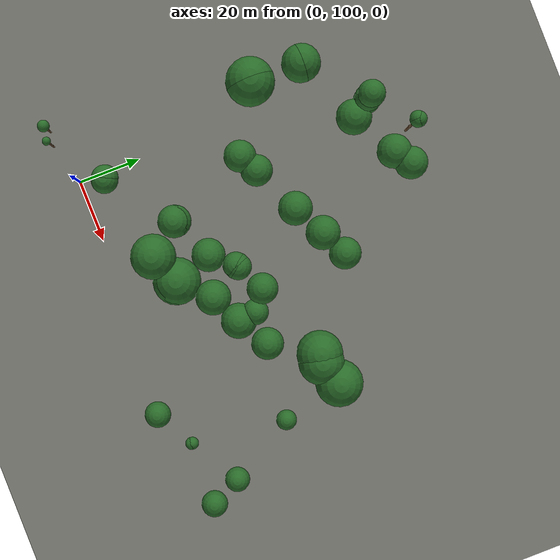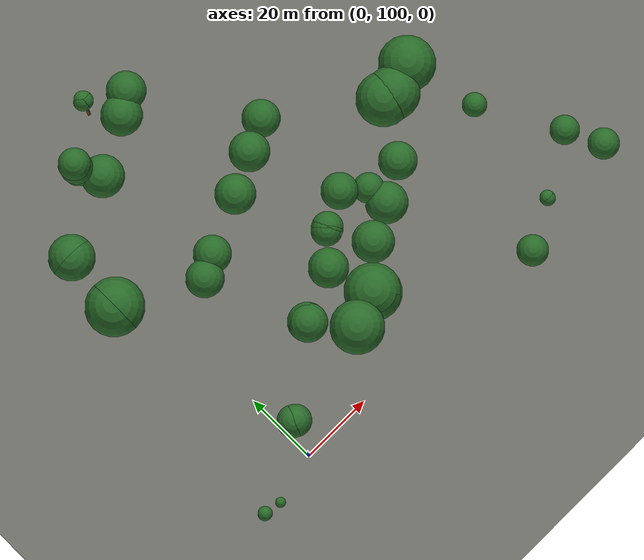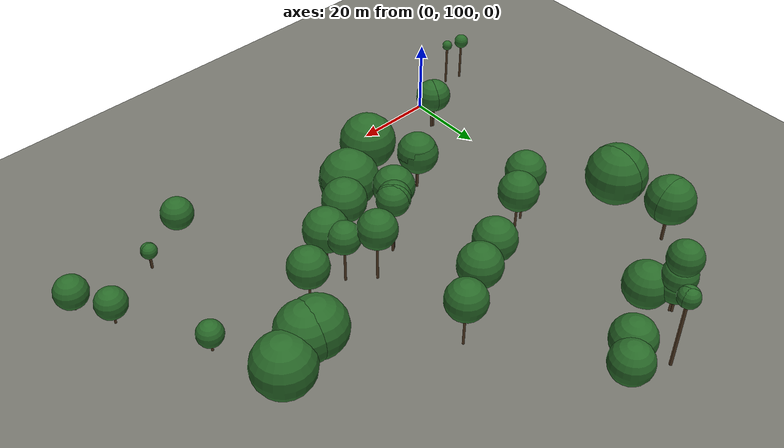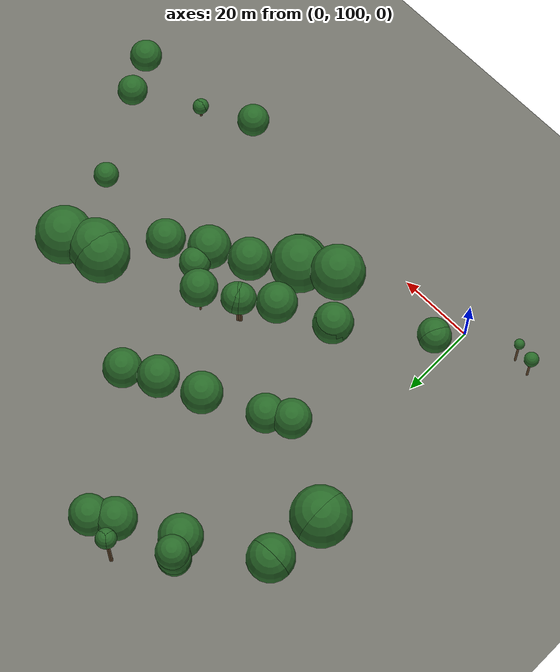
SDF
<sdf version="1.9">
 <world name="uav_arena_bk">
  <model name="ground_plane">
   <static>true</static>
   <link name="link">
    <collision name="collision">
     <geometry><plane><normal>0 0 1</normal><size>1200 1200</size></plane></geometry>
    </collision>
    <visual name="visual">
     <geometry><plane><normal>0 0 1</normal><size>1200 1200</size></plane></geometry>
     <material><ambient>0.35 0.35 0.33 1</ambient><diffuse>0.45 0.45 0.42 1</diffuse></material>
    </visual>
   </link>
  </model>
  <model name="tree_001">
   <static>true</static>
   <pose>22.447 203.263 0 0 0 0</pose>
   <link name="link">
    <collision name="trunk_collision">
     <pose>0 0 9.445 0 0 0</pose>
     <geometry><cylinder><radius>0.30</radius><length>18.890</length></cylinder></geometry>
    </collision>
    <visual name="trunk_visual">
     <pose>0 0 9.445 0 0 0</pose>
     <geometry><cylinder><radius>0.30</radius><length>18.890</length></cylinder></geometry>
     <material><ambient>0.25 0.18 0.11 1</ambient><diffuse>0.35 0.25 0.15 1</diffuse></material>
    </visual>
    <collision name="canopy_collision">
     <pose>0 0 21.390 0 0 0</pose>
     <geometry><sphere><radius>2.500</radius></sphere></geometry>
    </collision>
    <visual name="canopy_visual">
     <pose>0 0 21.390 0 0 0</pose>
     <geometry><sphere><radius>2.500</radius></sphere></geometry>
     <material><ambient>0.10 0.28 0.10 1</ambient><diffuse>0.16 0.42 0.16 1</diffuse></material>
     <plugin filename="gz-sim-label-system" name="gz::sim::systems::Label"><label>2</label></plugin>
    </visual>
   </link>
  </model>
  <model name="tree_002">
   <static>true</static>
   <pose>22.196 203.014 0 0 0 0</pose>
   <link name="link">
    <collision name="trunk_collision">
     <pose>0 0 9.440 0 0 0</pose>
     <geometry><cylinder><radius>0.30</radius><length>18.880</length></cylinder></geometry>
    </collision>
    <visual name="trunk_visual">
     <pose>0 0 9.440 0 0 0</pose>
     <geometry><cylinder><radius>0.30</radius><length>18.880</length></cylinder></geometry>
     <material><ambient>0.25 0.18 0.11 1</ambient><diffuse>0.35 0.25 0.15 1</diffuse></material>
    </visual>
    <collision name="canopy_collision">
     <pose>0 0 21.380 0 0 0</pose>
     <geometry><sphere><radius>2.500</radius></sphere></geometry>
    </collision>
    <visual name="canopy_visual">
     <pose>0 0 21.380 0 0 0</pose>
     <geometry><sphere><radius>2.500</radius></sphere></geometry>
     <material><ambient>0.10 0.28 0.10 1</ambient><diffuse>0.16 0.42 0.16 1</diffuse></material>
     <plugin filename="gz-sim-label-system" name="gz::sim::systems::Label"><label>2</label></plugin>
    </visual>
   </link>
  </model>
  <model name="tree_003">
   <static>true</static>
   <pose>22.446 203.013 0 0 0 0</pose>
   <link name="link">
    <collision name="trunk_collision">
     <pose>0 0 9.435 0 0 0</pose>
     <geometry><cylinder><radius>0.30</radius><length>18.870</length></cylinder></geometry>
    </collision>
    <visual name="trunk_visual">
     <pose>0 0 9.435 0 0 0</pose>
     <geometry><cylinder><radius>0.30</radius><length>18.870</length></cylinder></geometry>
     <material><ambient>0.25 0.18 0.11 1</ambient><diffuse>0.35 0.25 0.15 1</diffuse></material>
    </visual>
    <collision name="canopy_collision">
     <pose>0 0 21.370 0 0 0</pose>
     <geometry><sphere><radius>2.500</radius></sphere></geometry>
    </collision>
    <visual name="canopy_visual">
     <pose>0 0 21.370 0 0 0</pose>
     <geometry><sphere><radius>2.500</radius></sphere></geometry>
     <material><ambient>0.10 0.28 0.10 1</ambient><diffuse>0.16 0.42 0.16 1</diffuse></material>
     <plugin filename="gz-sim-label-system" name="gz::sim::systems::Label"><label>2</label></plugin>
    </visual>
   </link>
  </model>
  <model name="tree_004">
   <static>true</static>
   <pose>32.928 199.706 0 0 0 0</pose>
   <link name="link">
    <collision name="trunk_collision">
     <pose>0 0 0.500 0 0 0</pose>
     <geometry><cylinder><radius>0.30</radius><length>1.000</length></cylinder></geometry>
    </collision>
    <visual name="trunk_visual">
     <pose>0 0 0.500 0 0 0</pose>
     <geometry><cylinder><radius>0.30</radius><length>1.000</length></cylinder></geometry>
     <material><ambient>0.25 0.18 0.11 1</ambient><diffuse>0.35 0.25 0.15 1</diffuse></material>
    </visual>
    <collision name="canopy_collision">
     <pose>0 0 6.270 0 0 0</pose>
     <geometry><sphere><radius>5.270</radius></sphere></geometry>
    </collision>
    <visual name="canopy_visual">
     <pose>0 0 6.270 0 0 0</pose>
     <geometry><sphere><radius>5.270</radius></sphere></geometry>
     <material><ambient>0.10 0.28 0.10 1</ambient><diffuse>0.16 0.42 0.16 1</diffuse></material>
     <plugin filename="gz-sim-label-system" name="gz::sim::systems::Label"><label>2</label></plugin>
    </visual>
   </link>
  </model>
  <model name="tree_005">
   <static>true</static>
   <pose>27.658 195.985 0 0 0 0</pose>
   <link name="link">
    <collision name="trunk_collision">
     <pose>0 0 0.500 0 0 0</pose>
     <geometry><cylinder><radius>0.30</radius><length>1.000</length></cylinder></geometry>
    </collision>
    <visual name="trunk_visual">
     <pose>0 0 0.500 0 0 0</pose>
     <geometry><cylinder><radius>0.30</radius><length>1.000</length></cylinder></geometry>
     <material><ambient>0.25 0.18 0.11 1</ambient><diffuse>0.35 0.25 0.15 1</diffuse></material>
    </visual>
    <collision name="canopy_collision">
     <pose>0 0 6.500 0 0 0</pose>
     <geometry><sphere><radius>5.500</radius></sphere></geometry>
    </collision>
    <visual name="canopy_visual">
     <pose>0 0 6.500 0 0 0</pose>
     <geometry><sphere><radius>5.500</radius></sphere></geometry>
     <material><ambient>0.10 0.28 0.10 1</ambient><diffuse>0.16 0.42 0.16 1</diffuse></material>
     <plugin filename="gz-sim-label-system" name="gz::sim::systems::Label"><label>2</label></plugin>
    </visual>
   </link>
  </model>
  <model name="tree_006">
   <static>true</static>
   <pose>9.646 193.832 0 0 0 0</pose>
   <link name="link">
    <collision name="trunk_collision">
     <pose>0 0 6.415 0 0 0</pose>
     <geometry><cylinder><radius>0.30</radius><length>12.830</length></cylinder></geometry>
    </collision>
    <visual name="trunk_visual">
     <pose>0 0 6.415 0 0 0</pose>
     <geometry><cylinder><radius>0.30</radius><length>12.830</length></cylinder></geometry>
     <material><ambient>0.25 0.18 0.11 1</ambient><diffuse>0.35 0.25 0.15 1</diffuse></material>
    </visual>
    <collision name="canopy_collision">
     <pose>0 0 17.090 0 0 0</pose>
     <geometry><sphere><radius>4.260</radius></sphere></geometry>
    </collision>
    <visual name="canopy_visual">
     <pose>0 0 17.090 0 0 0</pose>
     <geometry><sphere><radius>4.260</radius></sphere></geometry>
     <material><ambient>0.10 0.28 0.10 1</ambient><diffuse>0.16 0.42 0.16 1</diffuse></material>
     <plugin filename="gz-sim-label-system" name="gz::sim::systems::Label"><label>2</label></plugin>
    </visual>
   </link>
  </model>
  <model name="tree_007">
   <static>true</static>
   <pose>9.644 193.582 0 0 0 0</pose>
   <link name="link">
    <collision name="trunk_collision">
     <pose>0 0 3.560 0 0 0</pose>
     <geometry><cylinder><radius>0.30</radius><length>7.120</length></cylinder></geometry>
    </collision>
    <visual name="trunk_visual">
     <pose>0 0 3.560 0 0 0</pose>
     <geometry><cylinder><radius>0.30</radius><length>7.120</length></cylinder></geometry>
     <material><ambient>0.25 0.18 0.11 1</ambient><diffuse>0.35 0.25 0.15 1</diffuse></material>
    </visual>
    <collision name="canopy_collision">
     <pose>0 0 11.380 0 0 0</pose>
     <geometry><sphere><radius>4.260</radius></sphere></geometry>
    </collision>
    <visual name="canopy_visual">
     <pose>0 0 11.380 0 0 0</pose>
     <geometry><sphere><radius>4.260</radius></sphere></geometry>
     <material><ambient>0.10 0.28 0.10 1</ambient><diffuse>0.16 0.42 0.16 1</diffuse></material>
     <plugin filename="gz-sim-label-system" name="gz::sim::systems::Label"><label>2</label></plugin>
    </visual>
   </link>
  </model>
  <model name="tree_008">
   <static>true</static>
   <pose>9.893 193.331 0 0 0 0</pose>
   <link name="link">
    <collision name="trunk_collision">
     <pose>0 0 1.945 0 0 0</pose>
     <geometry><cylinder><radius>0.30</radius><length>3.890</length></cylinder></geometry>
    </collision>
    <visual name="trunk_visual">
     <pose>0 0 1.945 0 0 0</pose>
     <geometry><cylinder><radius>0.30</radius><length>3.890</length></cylinder></geometry>
     <material><ambient>0.25 0.18 0.11 1</ambient><diffuse>0.35 0.25 0.15 1</diffuse></material>
    </visual>
    <collision name="canopy_collision">
     <pose>0 0 8.150 0 0 0</pose>
     <geometry><sphere><radius>4.260</radius></sphere></geometry>
    </collision>
    <visual name="canopy_visual">
     <pose>0 0 8.150 0 0 0</pose>
     <geometry><sphere><radius>4.260</radius></sphere></geometry>
     <material><ambient>0.10 0.28 0.10 1</ambient><diffuse>0.16 0.42 0.16 1</diffuse></material>
     <plugin filename="gz-sim-label-system" name="gz::sim::systems::Label"><label>2</label></plugin>
    </visual>
   </link>
  </model>
  <model name="tree_009">
   <static>true</static>
   <pose>13.114 188.064 0 0 0 0</pose>
   <link name="link">
    <collision name="trunk_collision">
     <pose>0 0 0.500 0 0 0</pose>
     <geometry><cylinder><radius>0.30</radius><length>1.000</length></cylinder></geometry>
    </collision>
    <visual name="trunk_visual">
     <pose>0 0 0.500 0 0 0</pose>
     <geometry><cylinder><radius>0.30</radius><length>1.000</length></cylinder></geometry>
     <material><ambient>0.25 0.18 0.11 1</ambient><diffuse>0.35 0.25 0.15 1</diffuse></material>
    </visual>
    <collision name="canopy_collision">
     <pose>0 0 6.700 0 0 0</pose>
     <geometry><sphere><radius>5.700</radius></sphere></geometry>
    </collision>
    <visual name="canopy_visual">
     <pose>0 0 6.700 0 0 0</pose>
     <geometry><sphere><radius>5.700</radius></sphere></geometry>
     <material><ambient>0.10 0.28 0.10 1</ambient><diffuse>0.16 0.42 0.16 1</diffuse></material>
     <plugin filename="gz-sim-label-system" name="gz::sim::systems::Label"><label>2</label></plugin>
    </visual>
   </link>
  </model>
  <model name="tree_010">
   <static>true</static>
   <pose>-7.441 177.925 0 0 0 0</pose>
   <link name="link">
    <collision name="trunk_collision">
     <pose>0 0 3.455 0 0 0</pose>
     <geometry><cylinder><radius>0.30</radius><length>6.910</length></cylinder></geometry>
    </collision>
    <visual name="trunk_visual">
     <pose>0 0 3.455 0 0 0</pose>
     <geometry><cylinder><radius>0.30</radius><length>6.910</length></cylinder></geometry>
     <material><ambient>0.25 0.18 0.11 1</ambient><diffuse>0.35 0.25 0.15 1</diffuse></material>
    </visual>
    <collision name="canopy_collision">
     <pose>0 0 12.910 0 0 0</pose>
     <geometry><sphere><radius>6.000</radius></sphere></geometry>
    </collision>
    <visual name="canopy_visual">
     <pose>0 0 12.910 0 0 0</pose>
     <geometry><sphere><radius>6.000</radius></sphere></geometry>
     <material><ambient>0.10 0.28 0.10 1</ambient><diffuse>0.16 0.42 0.16 1</diffuse></material>
     <plugin filename="gz-sim-label-system" name="gz::sim::systems::Label"><label>2</label></plugin>
    </visual>
   </link>
  </model>
  <model name="tree_011">
   <static>true</static>
   <pose>-7.442 177.675 0 0 0 0</pose>
   <link name="link">
    <collision name="trunk_collision">
     <pose>0 0 3.455 0 0 0</pose>
     <geometry><cylinder><radius>0.30</radius><length>6.910</length></cylinder></geometry>
    </collision>
    <visual name="trunk_visual">
     <pose>0 0 3.455 0 0 0</pose>
     <geometry><cylinder><radius>0.30</radius><length>6.910</length></cylinder></geometry>
     <material><ambient>0.25 0.18 0.11 1</ambient><diffuse>0.35 0.25 0.15 1</diffuse></material>
    </visual>
    <collision name="canopy_collision">
     <pose>0 0 12.910 0 0 0</pose>
     <geometry><sphere><radius>6.000</radius></sphere></geometry>
    </collision>
    <visual name="canopy_visual">
     <pose>0 0 12.910 0 0 0</pose>
     <geometry><sphere><radius>6.000</radius></sphere></geometry>
     <material><ambient>0.10 0.28 0.10 1</ambient><diffuse>0.16 0.42 0.16 1</diffuse></material>
     <plugin filename="gz-sim-label-system" name="gz::sim::systems::Label"><label>2</label></plugin>
    </visual>
   </link>
  </model>
  <model name="tree_012">
   <static>true</static>
   <pose>51.762 169.104 0 0 0 0</pose>
   <link name="link">
    <collision name="trunk_collision">
     <pose>0 0 4.595 0 0 0</pose>
     <geometry><cylinder><radius>0.30</radius><length>9.190</length></cylinder></geometry>
    </collision>
    <visual name="trunk_visual">
     <pose>0 0 4.595 0 0 0</pose>
     <geometry><cylinder><radius>0.30</radius><length>9.190</length></cylinder></geometry>
     <material><ambient>0.25 0.18 0.11 1</ambient><diffuse>0.35 0.25 0.15 1</diffuse></material>
    </visual>
    <collision name="canopy_collision">
     <pose>0 0 14.190 0 0 0</pose>
     <geometry><sphere><radius>5.000</radius></sphere></geometry>
    </collision>
    <visual name="canopy_visual">
     <pose>0 0 14.190 0 0 0</pose>
     <geometry><sphere><radius>5.000</radius></sphere></geometry>
     <material><ambient>0.10 0.28 0.10 1</ambient><diffuse>0.16 0.42 0.16 1</diffuse></material>
     <plugin filename="gz-sim-label-system" name="gz::sim::systems::Label"><label>2</label></plugin>
    </visual>
   </link>
  </model>
  <model name="tree_013">
   <static>true</static>
   <pose>43.489 164.899 0 0 0 0</pose>
   <link name="link">
    <collision name="trunk_collision">
     <pose>0 0 5.310 0 0 0</pose>
     <geometry><cylinder><radius>0.30</radius><length>10.620</length></cylinder></geometry>
    </collision>
    <visual name="trunk_visual">
     <pose>0 0 5.310 0 0 0</pose>
     <geometry><cylinder><radius>0.30</radius><length>10.620</length></cylinder></geometry>
     <material><ambient>0.25 0.18 0.11 1</ambient><diffuse>0.35 0.25 0.15 1</diffuse></material>
    </visual>
    <collision name="canopy_collision">
     <pose>0 0 15.940 0 0 0</pose>
     <geometry><sphere><radius>5.320</radius></sphere></geometry>
    </collision>
    <visual name="canopy_visual">
     <pose>0 0 15.940 0 0 0</pose>
     <geometry><sphere><radius>5.320</radius></sphere></geometry>
     <material><ambient>0.10 0.28 0.10 1</ambient><diffuse>0.16 0.42 0.16 1</diffuse></material>
     <plugin filename="gz-sim-label-system" name="gz::sim::systems::Label"><label>2</label></plugin>
    </visual>
   </link>
  </model>
  <model name="tree_014">
   <static>true</static>
   <pose>-8.530 161.431 0 0 0 0</pose>
   <link name="link">
    <collision name="trunk_collision">
     <pose>0 0 1.090 0 0 0</pose>
     <geometry><cylinder><radius>0.30</radius><length>2.180</length></cylinder></geometry>
    </collision>
    <visual name="trunk_visual">
     <pose>0 0 1.090 0 0 0</pose>
     <geometry><cylinder><radius>0.30</radius><length>2.180</length></cylinder></geometry>
     <material><ambient>0.25 0.18 0.11 1</ambient><diffuse>0.35 0.25 0.15 1</diffuse></material>
    </visual>
    <collision name="canopy_collision">
     <pose>0 0 9.880 0 0 0</pose>
     <geometry><sphere><radius>7.700</radius></sphere></geometry>
    </collision>
    <visual name="canopy_visual">
     <pose>0 0 9.880 0 0 0</pose>
     <geometry><sphere><radius>7.700</radius></sphere></geometry>
     <material><ambient>0.10 0.28 0.10 1</ambient><diffuse>0.16 0.42 0.16 1</diffuse></material>
     <plugin filename="gz-sim-label-system" name="gz::sim::systems::Label"><label>2</label></plugin>
    </visual>
   </link>
  </model>
  <model name="tree_015">
   <static>true</static>
   <pose>-8.280 161.429 0 0 0 0</pose>
   <link name="link">
    <collision name="trunk_collision">
     <pose>0 0 1.090 0 0 0</pose>
     <geometry><cylinder><radius>0.30</radius><length>2.180</length></cylinder></geometry>
    </collision>
    <visual name="trunk_visual">
     <pose>0 0 1.090 0 0 0</pose>
     <geometry><cylinder><radius>0.30</radius><length>2.180</length></cylinder></geometry>
     <material><ambient>0.25 0.18 0.11 1</ambient><diffuse>0.35 0.25 0.15 1</diffuse></material>
    </visual>
    <collision name="canopy_collision">
     <pose>0 0 9.880 0 0 0</pose>
     <geometry><sphere><radius>7.700</radius></sphere></geometry>
    </collision>
    <visual name="canopy_visual">
     <pose>0 0 9.880 0 0 0</pose>
     <geometry><sphere><radius>7.700</radius></sphere></geometry>
     <material><ambient>0.10 0.28 0.10 1</ambient><diffuse>0.16 0.42 0.16 1</diffuse></material>
     <plugin filename="gz-sim-label-system" name="gz::sim::systems::Label"><label>2</label></plugin>
    </visual>
   </link>
  </model>
  <model name="tree_016">
   <static>true</static>
   <pose>33.462 159.953 0 0 0 0</pose>
   <link name="link">
    <collision name="trunk_collision">
     <pose>0 0 4.165 0 0 0</pose>
     <geometry><cylinder><radius>0.30</radius><length>8.330</length></cylinder></geometry>
    </collision>
    <visual name="trunk_visual">
     <pose>0 0 4.165 0 0 0</pose>
     <geometry><cylinder><radius>0.30</radius><length>8.330</length></cylinder></geometry>
     <material><ambient>0.25 0.18 0.11 1</ambient><diffuse>0.35 0.25 0.15 1</diffuse></material>
    </visual>
    <collision name="canopy_collision">
     <pose>0 0 13.650 0 0 0</pose>
     <geometry><sphere><radius>5.320</radius></sphere></geometry>
    </collision>
    <visual name="canopy_visual">
     <pose>0 0 13.650 0 0 0</pose>
     <geometry><sphere><radius>5.320</radius></sphere></geometry>
     <material><ambient>0.10 0.28 0.10 1</ambient><diffuse>0.16 0.42 0.16 1</diffuse></material>
     <plugin filename="gz-sim-label-system" name="gz::sim::systems::Label"><label>2</label></plugin>
    </visual>
   </link>
  </model>
  <model name="tree_025">
   <static>true</static>
   <pose>88.927 153.402 0 0 0 0</pose>
   <link name="link">
    <collision name="trunk_collision">
     <pose>0 0 0.500 0 0 0</pose>
     <geometry><cylinder><radius>0.30</radius><length>1.000</length></cylinder></geometry>
    </collision>
    <visual name="trunk_visual">
     <pose>0 0 0.500 0 0 0</pose>
     <geometry><cylinder><radius>0.30</radius><length>1.000</length></cylinder></geometry>
     <material><ambient>0.25 0.18 0.11 1</ambient><diffuse>0.35 0.25 0.15 1</diffuse></material>
    </visual>
    <collision name="canopy_collision">
     <pose>0 0 8.500 0 0 0</pose>
     <geometry><sphere><radius>7.500</radius></sphere></geometry>
    </collision>
    <visual name="canopy_visual">
     <pose>0 0 8.500 0 0 0</pose>
     <geometry><sphere><radius>7.500</radius></sphere></geometry>
     <material><ambient>0.10 0.28 0.10 1</ambient><diffuse>0.16 0.42 0.16 1</diffuse></material>
     <plugin filename="gz-sim-label-system" name="gz::sim::systems::Label"><label>2</label></plugin>
    </visual>
   </link>
  </model>
  <model name="tree_026">
   <static>true</static>
   <pose>18.425 153.035 0 0 0 0</pose>
   <link name="link">
    <collision name="trunk_collision">
     <pose>0 0 4.770 0 0 0</pose>
     <geometry><cylinder><radius>0.30</radius><length>9.540</length></cylinder></geometry>
    </collision>
    <visual name="trunk_visual">
     <pose>0 0 4.770 0 0 0</pose>
     <geometry><cylinder><radius>0.30</radius><length>9.540</length></cylinder></geometry>
     <material><ambient>0.25 0.18 0.11 1</ambient><diffuse>0.35 0.25 0.15 1</diffuse></material>
    </visual>
    <collision name="canopy_collision">
     <pose>0 0 14.500 0 0 0</pose>
     <geometry><sphere><radius>4.960</radius></sphere></geometry>
    </collision>
    <visual name="canopy_visual">
     <pose>0 0 14.500 0 0 0</pose>
     <geometry><sphere><radius>4.960</radius></sphere></geometry>
     <material><ambient>0.10 0.28 0.10 1</ambient><diffuse>0.16 0.42 0.16 1</diffuse></material>
     <plugin filename="gz-sim-label-system" name="gz::sim::systems::Label"><label>2</label></plugin>
    </visual>
   </link>
  </model>
  <model name="tree_027">
   <static>true</static>
   <pose>77.914 150.962 0 0 0 0</pose>
   <link name="link">
    <collision name="trunk_collision">
     <pose>0 0 1.460 0 0 0</pose>
     <geometry><cylinder><radius>0.30</radius><length>2.920</length></cylinder></geometry>
    </collision>
    <visual name="trunk_visual">
     <pose>0 0 1.460 0 0 0</pose>
     <geometry><cylinder><radius>0.30</radius><length>2.920</length></cylinder></geometry>
     <material><ambient>0.25 0.18 0.11 1</ambient><diffuse>0.35 0.25 0.15 1</diffuse></material>
    </visual>
    <collision name="canopy_collision">
     <pose>0 0 10.170 0 0 0</pose>
     <geometry><sphere><radius>7.250</radius></sphere></geometry>
    </collision>
    <visual name="canopy_visual">
     <pose>0 0 10.170 0 0 0</pose>
     <geometry><sphere><radius>7.250</radius></sphere></geometry>
     <material><ambient>0.10 0.28 0.10 1</ambient><diffuse>0.16 0.42 0.16 1</diffuse></material>
     <plugin filename="gz-sim-label-system" name="gz::sim::systems::Label"><label>2</label></plugin>
    </visual>
   </link>
  </model>
  <model name="tree_028">
   <static>true</static>
   <pose>80.661 150.447 0 0 0 0</pose>
   <link name="link">
    <collision name="trunk_collision">
     <pose>0 0 1.455 0 0 0</pose>
     <geometry><cylinder><radius>0.30</radius><length>2.910</length></cylinder></geometry>
    </collision>
    <visual name="trunk_visual">
     <pose>0 0 1.455 0 0 0</pose>
     <geometry><cylinder><radius>0.30</radius><length>2.910</length></cylinder></geometry>
     <material><ambient>0.25 0.18 0.11 1</ambient><diffuse>0.35 0.25 0.15 1</diffuse></material>
    </visual>
    <collision name="canopy_collision">
     <pose>0 0 10.110 0 0 0</pose>
     <geometry><sphere><radius>7.200</radius></sphere></geometry>
    </collision>
    <visual name="canopy_visual">
     <pose>0 0 10.110 0 0 0</pose>
     <geometry><sphere><radius>7.200</radius></sphere></geometry>
     <material><ambient>0.10 0.28 0.10 1</ambient><diffuse>0.16 0.42 0.16 1</diffuse></material>
     <plugin filename="gz-sim-label-system" name="gz::sim::systems::Label"><label>2</label></plugin>
    </visual>
   </link>
  </model>
  <model name="tree_029">
   <static>true</static>
   <pose>12.657 149.816 0 0 0 0</pose>
   <link name="link">
    <collision name="trunk_collision">
     <pose>0 0 5.265 0 0 0</pose>
     <geometry><cylinder><radius>0.30</radius><length>10.530</length></cylinder></geometry>
    </collision>
    <visual name="trunk_visual">
     <pose>0 0 5.265 0 0 0</pose>
     <geometry><cylinder><radius>0.30</radius><length>10.530</length></cylinder></geometry>
     <material><ambient>0.25 0.18 0.11 1</ambient><diffuse>0.35 0.25 0.15 1</diffuse></material>
    </visual>
    <collision name="canopy_collision">
     <pose>0 0 15.530 0 0 0</pose>
     <geometry><sphere><radius>5.000</radius></sphere></geometry>
    </collision>
    <visual name="canopy_visual">
     <pose>0 0 15.530 0 0 0</pose>
     <geometry><sphere><radius>5.000</radius></sphere></geometry>
     <material><ambient>0.10 0.28 0.10 1</ambient><diffuse>0.16 0.42 0.16 1</diffuse></material>
     <plugin filename="gz-sim-label-system" name="gz::sim::systems::Label"><label>2</label></plugin>
    </visual>
   </link>
  </model>
  <model name="tree_032">
   <static>true</static>
   <pose>52.613 141.599 0 0 0 0</pose>
   <link name="link">
    <collision name="trunk_collision">
     <pose>0 0 5.445 0 0 0</pose>
     <geometry><cylinder><radius>0.30</radius><length>10.890</length></cylinder></geometry>
    </collision>
    <visual name="trunk_visual">
     <pose>0 0 5.445 0 0 0</pose>
     <geometry><cylinder><radius>0.30</radius><length>10.890</length></cylinder></geometry>
     <material><ambient>0.25 0.18 0.11 1</ambient><diffuse>0.35 0.25 0.15 1</diffuse></material>
    </visual>
    <collision name="canopy_collision">
     <pose>0 0 15.720 0 0 0</pose>
     <geometry><sphere><radius>4.830</radius></sphere></geometry>
    </collision>
    <visual name="canopy_visual">
     <pose>0 0 15.720 0 0 0</pose>
     <geometry><sphere><radius>4.830</radius></sphere></geometry>
     <material><ambient>0.10 0.28 0.10 1</ambient><diffuse>0.16 0.42 0.16 1</diffuse></material>
     <plugin filename="gz-sim-label-system" name="gz::sim::systems::Label"><label>2</label></plugin>
    </visual>
   </link>
  </model>
  <model name="tree_034">
   <static>true</static>
   <pose>43.839 137.147 0 0 0 0</pose>
   <link name="link">
    <collision name="trunk_collision">
     <pose>0 0 6.180 0 0 0</pose>
     <geometry><cylinder><radius>0.30</radius><length>12.360</length></cylinder></geometry>
    </collision>
    <visual name="trunk_visual">
     <pose>0 0 6.180 0 0 0</pose>
     <geometry><cylinder><radius>0.30</radius><length>12.360</length></cylinder></geometry>
     <material><ambient>0.25 0.18 0.11 1</ambient><diffuse>0.35 0.25 0.15 1</diffuse></material>
    </visual>
    <collision name="canopy_collision">
     <pose>0 0 16.430 0 0 0</pose>
     <geometry><sphere><radius>4.070</radius></sphere></geometry>
    </collision>
    <visual name="canopy_visual">
     <pose>0 0 16.430 0 0 0</pose>
     <geometry><sphere><radius>4.070</radius></sphere></geometry>
     <material><ambient>0.10 0.28 0.10 1</ambient><diffuse>0.16 0.42 0.16 1</diffuse></material>
     <plugin filename="gz-sim-label-system" name="gz::sim::systems::Label"><label>2</label></plugin>
    </visual>
   </link>
  </model>
  <model name="tree_035">
   <static>true</static>
   <pose>58.589 137.067 0 0 0 0</pose>
   <link name="link">
    <collision name="trunk_collision">
     <pose>0 0 4.835 0 0 0</pose>
     <geometry><cylinder><radius>0.30</radius><length>9.670</length></cylinder></geometry>
    </collision>
    <visual name="trunk_visual">
     <pose>0 0 4.835 0 0 0</pose>
     <geometry><cylinder><radius>0.30</radius><length>9.670</length></cylinder></geometry>
     <material><ambient>0.25 0.18 0.11 1</ambient><diffuse>0.35 0.25 0.15 1</diffuse></material>
    </visual>
    <collision name="canopy_collision">
     <pose>0 0 13.710 0 0 0</pose>
     <geometry><sphere><radius>4.040</radius></sphere></geometry>
    </collision>
    <visual name="canopy_visual">
     <pose>0 0 13.710 0 0 0</pose>
     <geometry><sphere><radius>4.040</radius></sphere></geometry>
     <material><ambient>0.10 0.28 0.10 1</ambient><diffuse>0.16 0.42 0.16 1</diffuse></material>
     <plugin filename="gz-sim-label-system" name="gz::sim::systems::Label"><label>2</label></plugin>
    </visual>
   </link>
  </model>
  <model name="tree_036">
   <static>true</static>
   <pose>69.088 137.010 0 0 0 0</pose>
   <link name="link">
    <collision name="trunk_collision">
     <pose>0 0 3.150 0 0 0</pose>
     <geometry><cylinder><radius>0.30</radius><length>6.300</length></cylinder></geometry>
    </collision>
    <visual name="trunk_visual">
     <pose>0 0 3.150 0 0 0</pose>
     <geometry><cylinder><radius>0.30</radius><length>6.300</length></cylinder></geometry>
     <material><ambient>0.25 0.18 0.11 1</ambient><diffuse>0.35 0.25 0.15 1</diffuse></material>
    </visual>
    <collision name="canopy_collision">
     <pose>0 0 11.360 0 0 0</pose>
     <geometry><sphere><radius>5.060</radius></sphere></geometry>
    </collision>
    <visual name="canopy_visual">
     <pose>0 0 11.360 0 0 0</pose>
     <geometry><sphere><radius>5.060</radius></sphere></geometry>
     <material><ambient>0.10 0.28 0.10 1</ambient><diffuse>0.16 0.42 0.16 1</diffuse></material>
     <plugin filename="gz-sim-label-system" name="gz::sim::systems::Label"><label>2</label></plugin>
    </visual>
   </link>
  </model>
  <model name="tree_037">
   <static>true</static>
   <pose>43.338 136.899 0 0 0 0</pose>
   <link name="link">
    <collision name="trunk_collision">
     <pose>0 0 6.190 0 0 0</pose>
     <geometry><cylinder><radius>0.30</radius><length>12.380</length></cylinder></geometry>
    </collision>
    <visual name="trunk_visual">
     <pose>0 0 6.190 0 0 0</pose>
     <geometry><cylinder><radius>0.30</radius><length>12.380</length></cylinder></geometry>
     <material><ambient>0.25 0.18 0.11 1</ambient><diffuse>0.35 0.25 0.15 1</diffuse></material>
    </visual>
    <collision name="canopy_collision">
     <pose>0 0 16.450 0 0 0</pose>
     <geometry><sphere><radius>4.070</radius></sphere></geometry>
    </collision>
    <visual name="canopy_visual">
     <pose>0 0 16.450 0 0 0</pose>
     <geometry><sphere><radius>4.070</radius></sphere></geometry>
     <material><ambient>0.10 0.28 0.10 1</ambient><diffuse>0.16 0.42 0.16 1</diffuse></material>
     <plugin filename="gz-sim-label-system" name="gz::sim::systems::Label"><label>2</label></plugin>
    </visual>
   </link>
  </model>
  <model name="tree_038">
   <static>true</static>
   <pose>43.588 136.898 0 0 0 0</pose>
   <link name="link">
    <collision name="trunk_collision">
     <pose>0 0 6.180 0 0 0</pose>
     <geometry><cylinder><radius>0.30</radius><length>12.360</length></cylinder></geometry>
    </collision>
    <visual name="trunk_visual">
     <pose>0 0 6.180 0 0 0</pose>
     <geometry><cylinder><radius>0.30</radius><length>12.360</length></cylinder></geometry>
     <material><ambient>0.25 0.18 0.11 1</ambient><diffuse>0.35 0.25 0.15 1</diffuse></material>
    </visual>
    <collision name="canopy_collision">
     <pose>0 0 16.430 0 0 0</pose>
     <geometry><sphere><radius>4.070</radius></sphere></geometry>
    </collision>
    <visual name="canopy_visual">
     <pose>0 0 16.430 0 0 0</pose>
     <geometry><sphere><radius>4.070</radius></sphere></geometry>
     <material><ambient>0.10 0.28 0.10 1</ambient><diffuse>0.16 0.42 0.16 1</diffuse></material>
     <plugin filename="gz-sim-label-system" name="gz::sim::systems::Label"><label>2</label></plugin>
    </visual>
   </link>
  </model>
  <model name="tree_039">
   <static>true</static>
   <pose>43.086 136.651 0 0 0 0</pose>
   <link name="link">
    <collision name="trunk_collision">
     <pose>0 0 6.190 0 0 0</pose>
     <geometry><cylinder><radius>0.30</radius><length>12.380</length></cylinder></geometry>
    </collision>
    <visual name="trunk_visual">
     <pose>0 0 6.190 0 0 0</pose>
     <geometry><cylinder><radius>0.30</radius><length>12.380</length></cylinder></geometry>
     <material><ambient>0.25 0.18 0.11 1</ambient><diffuse>0.35 0.25 0.15 1</diffuse></material>
    </visual>
    <collision name="canopy_collision">
     <pose>0 0 16.450 0 0 0</pose>
     <geometry><sphere><radius>4.070</radius></sphere></geometry>
    </collision>
    <visual name="canopy_visual">
     <pose>0 0 16.450 0 0 0</pose>
     <geometry><sphere><radius>4.070</radius></sphere></geometry>
     <material><ambient>0.10 0.28 0.10 1</ambient><diffuse>0.16 0.42 0.16 1</diffuse></material>
     <plugin filename="gz-sim-label-system" name="gz::sim::systems::Label"><label>2</label></plugin>
    </visual>
   </link>
  </model>
  <model name="tree_040">
   <static>true</static>
   <pose>94.072 133.874 0 0 0 0</pose>
   <link name="link">
    <collision name="trunk_collision">
     <pose>0 0 1.145 0 0 0</pose>
     <geometry><cylinder><radius>0.30</radius><length>2.290</length></cylinder></geometry>
    </collision>
    <visual name="trunk_visual">
     <pose>0 0 1.145 0 0 0</pose>
     <geometry><cylinder><radius>0.30</radius><length>2.290</length></cylinder></geometry>
     <material><ambient>0.25 0.18 0.11 1</ambient><diffuse>0.35 0.25 0.15 1</diffuse></material>
    </visual>
    <collision name="canopy_collision">
     <pose>0 0 5.540 0 0 0</pose>
     <geometry><sphere><radius>3.250</radius></sphere></geometry>
    </collision>
    <visual name="canopy_visual">
     <pose>0 0 5.540 0 0 0</pose>
     <geometry><sphere><radius>3.250</radius></sphere></geometry>
     <material><ambient>0.10 0.28 0.10 1</ambient><diffuse>0.16 0.42 0.16 1</diffuse></material>
     <plugin filename="gz-sim-label-system" name="gz::sim::systems::Label"><label>2</label></plugin>
    </visual>
   </link>
  </model>
  <model name="tree_041">
   <static>true</static>
   <pose>59.307 131.313 0 0 0 0</pose>
   <link name="link">
    <collision name="trunk_collision">
     <pose>0 0 3.490 0 0 0</pose>
     <geometry><cylinder><radius>0.30</radius><length>6.980</length></cylinder></geometry>
    </collision>
    <visual name="trunk_visual">
     <pose>0 0 3.490 0 0 0</pose>
     <geometry><cylinder><radius>0.30</radius><length>6.980</length></cylinder></geometry>
     <material><ambient>0.25 0.18 0.11 1</ambient><diffuse>0.35 0.25 0.15 1</diffuse></material>
    </visual>
    <collision name="canopy_collision">
     <pose>0 0 12.530 0 0 0</pose>
     <geometry><sphere><radius>5.550</radius></sphere></geometry>
    </collision>
    <visual name="canopy_visual">
     <pose>0 0 12.530 0 0 0</pose>
     <geometry><sphere><radius>5.550</radius></sphere></geometry>
     <material><ambient>0.10 0.28 0.10 1</ambient><diffuse>0.16 0.42 0.16 1</diffuse></material>
     <plugin filename="gz-sim-label-system" name="gz::sim::systems::Label"><label>2</label></plugin>
    </visual>
   </link>
  </model>
  <model name="tree_042">
   <static>true</static>
   <pose>37.050 129.934 0 0 0 0</pose>
   <link name="link">
    <collision name="trunk_collision">
     <pose>0 0 3.270 0 0 0</pose>
     <geometry><cylinder><radius>0.30</radius><length>6.540</length></cylinder></geometry>
    </collision>
    <visual name="trunk_visual">
     <pose>0 0 3.270 0 0 0</pose>
     <geometry><cylinder><radius>0.30</radius><length>6.540</length></cylinder></geometry>
     <material><ambient>0.25 0.18 0.11 1</ambient><diffuse>0.35 0.25 0.15 1</diffuse></material>
    </visual>
    <collision name="canopy_collision">
     <pose>0 0 11.790 0 0 0</pose>
     <geometry><sphere><radius>5.250</radius></sphere></geometry>
    </collision>
    <visual name="canopy_visual">
     <pose>0 0 11.790 0 0 0</pose>
     <geometry><sphere><radius>5.250</radius></sphere></geometry>
     <material><ambient>0.10 0.28 0.10 1</ambient><diffuse>0.16 0.42 0.16 1</diffuse></material>
     <plugin filename="gz-sim-label-system" name="gz::sim::systems::Label"><label>2</label></plugin>
    </visual>
   </link>
  </model>
  <model name="tree_043">
   <static>true</static>
   <pose>49.782 126.614 0 0 0 0</pose>
   <link name="link">
    <collision name="trunk_collision">
     <pose>0 0 3.605 0 0 0</pose>
     <geometry><cylinder><radius>0.30</radius><length>7.210</length></cylinder></geometry>
    </collision>
    <visual name="trunk_visual">
     <pose>0 0 3.605 0 0 0</pose>
     <geometry><cylinder><radius>0.30</radius><length>7.210</length></cylinder></geometry>
     <material><ambient>0.25 0.18 0.11 1</ambient><diffuse>0.35 0.25 0.15 1</diffuse></material>
    </visual>
    <collision name="canopy_collision">
     <pose>0 0 12.730 0 0 0</pose>
     <geometry><sphere><radius>5.520</radius></sphere></geometry>
    </collision>
    <visual name="canopy_visual">
     <pose>0 0 12.730 0 0 0</pose>
     <geometry><sphere><radius>5.520</radius></sphere></geometry>
     <material><ambient>0.10 0.28 0.10 1</ambient><diffuse>0.16 0.42 0.16 1</diffuse></material>
     <plugin filename="gz-sim-label-system" name="gz::sim::systems::Label"><label>2</label></plugin>
    </visual>
   </link>
  </model>
  <model name="tree_044">
   <static>true</static>
   <pose>23.517 124.007 0 0 0 0</pose>
   <link name="link">
    <collision name="trunk_collision">
     <pose>0 0 2.830 0 0 0</pose>
     <geometry><cylinder><radius>0.30</radius><length>5.660</length></cylinder></geometry>
    </collision>
    <visual name="trunk_visual">
     <pose>0 0 2.830 0 0 0</pose>
     <geometry><cylinder><radius>0.30</radius><length>5.660</length></cylinder></geometry>
     <material><ambient>0.25 0.18 0.11 1</ambient><diffuse>0.35 0.25 0.15 1</diffuse></material>
    </visual>
    <collision name="canopy_collision">
     <pose>0 0 10.810 0 0 0</pose>
     <geometry><sphere><radius>5.150</radius></sphere></geometry>
    </collision>
    <visual name="canopy_visual">
     <pose>0 0 10.810 0 0 0</pose>
     <geometry><sphere><radius>5.150</radius></sphere></geometry>
     <material><ambient>0.10 0.28 0.10 1</ambient><diffuse>0.16 0.42 0.16 1</diffuse></material>
     <plugin filename="gz-sim-label-system" name="gz::sim::systems::Label"><label>2</label></plugin>
    </visual>
   </link>
  </model>
  <model name="tree_045">
   <static>true</static>
   <pose>23.516 123.757 0 0 0 0</pose>
   <link name="link">
    <collision name="trunk_collision">
     <pose>0 0 3.000 0 0 0</pose>
     <geometry><cylinder><radius>0.30</radius><length>6.000</length></cylinder></geometry>
    </collision>
    <visual name="trunk_visual">
     <pose>0 0 3.000 0 0 0</pose>
     <geometry><cylinder><radius>0.30</radius><length>6.000</length></cylinder></geometry>
     <material><ambient>0.25 0.18 0.11 1</ambient><diffuse>0.35 0.25 0.15 1</diffuse></material>
    </visual>
    <collision name="canopy_collision">
     <pose>0 0 11.150 0 0 0</pose>
     <geometry><sphere><radius>5.150</radius></sphere></geometry>
    </collision>
    <visual name="canopy_visual">
     <pose>0 0 11.150 0 0 0</pose>
     <geometry><sphere><radius>5.150</radius></sphere></geometry>
     <material><ambient>0.10 0.28 0.10 1</ambient><diffuse>0.16 0.42 0.16 1</diffuse></material>
     <plugin filename="gz-sim-label-system" name="gz::sim::systems::Label"><label>2</label></plugin>
    </visual>
   </link>
  </model>
  <model name="tree_046">
   <static>true</static>
   <pose>40.985 117.912 0 0 0 0</pose>
   <link name="link">
    <collision name="trunk_collision">
     <pose>0 0 0.775 0 0 0</pose>
     <geometry><cylinder><radius>0.30</radius><length>1.550</length></cylinder></geometry>
    </collision>
    <visual name="trunk_visual">
     <pose>0 0 0.775 0 0 0</pose>
     <geometry><cylinder><radius>0.30</radius><length>1.550</length></cylinder></geometry>
     <material><ambient>0.25 0.18 0.11 1</ambient><diffuse>0.35 0.25 0.15 1</diffuse></material>
    </visual>
    <collision name="canopy_collision">
     <pose>0 0 9.010 0 0 0</pose>
     <geometry><sphere><radius>7.460</radius></sphere></geometry>
    </collision>
    <visual name="canopy_visual">
     <pose>0 0 9.010 0 0 0</pose>
     <geometry><sphere><radius>7.460</radius></sphere></geometry>
     <material><ambient>0.10 0.28 0.10 1</ambient><diffuse>0.16 0.42 0.16 1</diffuse></material>
     <plugin filename="gz-sim-label-system" name="gz::sim::systems::Label"><label>2</label></plugin>
    </visual>
   </link>
  </model>
  <model name="tree_047">
   <static>true</static>
   <pose>40.983 117.662 0 0 0 0</pose>
   <link name="link">
    <collision name="trunk_collision">
     <pose>0 0 0.590 0 0 0</pose>
     <geometry><cylinder><radius>0.30</radius><length>1.180</length></cylinder></geometry>
    </collision>
    <visual name="trunk_visual">
     <pose>0 0 0.590 0 0 0</pose>
     <geometry><cylinder><radius>0.30</radius><length>1.180</length></cylinder></geometry>
     <material><ambient>0.25 0.18 0.11 1</ambient><diffuse>0.35 0.25 0.15 1</diffuse></material>
    </visual>
    <collision name="canopy_collision">
     <pose>0 0 8.640 0 0 0</pose>
     <geometry><sphere><radius>7.460</radius></sphere></geometry>
    </collision>
    <visual name="canopy_visual">
     <pose>0 0 8.640 0 0 0</pose>
     <geometry><sphere><radius>7.460</radius></sphere></geometry>
     <material><ambient>0.10 0.28 0.10 1</ambient><diffuse>0.16 0.42 0.16 1</diffuse></material>
     <plugin filename="gz-sim-label-system" name="gz::sim::systems::Label"><label>2</label></plugin>
    </visual>
   </link>
  </model>
  <model name="tree_048">
   <static>true</static>
   <pose>31.463 113.964 0 0 0 0</pose>
   <link name="link">
    <collision name="trunk_collision">
     <pose>0 0 3.040 0 0 0</pose>
     <geometry><cylinder><radius>0.30</radius><length>6.080</length></cylinder></geometry>
    </collision>
    <visual name="trunk_visual">
     <pose>0 0 3.040 0 0 0</pose>
     <geometry><cylinder><radius>0.30</radius><length>6.080</length></cylinder></geometry>
     <material><ambient>0.25 0.18 0.11 1</ambient><diffuse>0.35 0.25 0.15 1</diffuse></material>
    </visual>
    <collision name="canopy_collision">
     <pose>0 0 13.160 0 0 0</pose>
     <geometry><sphere><radius>7.080</radius></sphere></geometry>
    </collision>
    <visual name="canopy_visual">
     <pose>0 0 13.160 0 0 0</pose>
     <geometry><sphere><radius>7.080</radius></sphere></geometry>
     <material><ambient>0.10 0.28 0.10 1</ambient><diffuse>0.16 0.42 0.16 1</diffuse></material>
     <plugin filename="gz-sim-label-system" name="gz::sim::systems::Label"><label>2</label></plugin>
    </visual>
   </link>
  </model>
  <model name="tree_049">
   <static>true</static>
   <pose>105.708 112.811 0 0 0 0</pose>
   <link name="link">
    <collision name="trunk_collision">
     <pose>0 0 1.305 0 0 0</pose>
     <geometry><cylinder><radius>0.30</radius><length>2.610</length></cylinder></geometry>
    </collision>
    <visual name="trunk_visual">
     <pose>0 0 1.305 0 0 0</pose>
     <geometry><cylinder><radius>0.30</radius><length>2.610</length></cylinder></geometry>
     <material><ambient>0.25 0.18 0.11 1</ambient><diffuse>0.35 0.25 0.15 1</diffuse></material>
    </visual>
    <collision name="canopy_collision">
     <pose>0 0 6.520 0 0 0</pose>
     <geometry><sphere><radius>3.910</radius></sphere></geometry>
    </collision>
    <visual name="canopy_visual">
     <pose>0 0 6.520 0 0 0</pose>
     <geometry><sphere><radius>3.910</radius></sphere></geometry>
     <material><ambient>0.10 0.28 0.10 1</ambient><diffuse>0.16 0.42 0.16 1</diffuse></material>
     <plugin filename="gz-sim-label-system" name="gz::sim::systems::Label"><label>2</label></plugin>
    </visual>
   </link>
  </model>
  <model name="tree_050">
   <static>true</static>
   <pose>3.184 108.617 0 0 0 0</pose>
   <link name="link">
    <collision name="trunk_collision">
     <pose>0 0 2.990 0 0 0</pose>
     <geometry><cylinder><radius>0.30</radius><length>5.980</length></cylinder></geometry>
    </collision>
    <visual name="trunk_visual">
     <pose>0 0 2.990 0 0 0</pose>
     <geometry><cylinder><radius>0.30</radius><length>5.980</length></cylinder></geometry>
     <material><ambient>0.25 0.18 0.11 1</ambient><diffuse>0.35 0.25 0.15 1</diffuse></material>
    </visual>
    <collision name="canopy_collision">
     <pose>0 0 10.260 0 0 0</pose>
     <geometry><sphere><radius>4.280</radius></sphere></geometry>
    </collision>
    <visual name="canopy_visual">
     <pose>0 0 10.260 0 0 0</pose>
     <geometry><sphere><radius>4.280</radius></sphere></geometry>
     <material><ambient>0.10 0.28 0.10 1</ambient><diffuse>0.16 0.42 0.16 1</diffuse></material>
     <plugin filename="gz-sim-label-system" name="gz::sim::systems::Label"><label>2</label></plugin>
    </visual>
   </link>
  </model>
  <model name="tree_051">
   <static>true</static>
   <pose>3.682 108.364 0 0 0 0</pose>
   <link name="link">
    <collision name="trunk_collision">
     <pose>0 0 2.990 0 0 0</pose>
     <geometry><cylinder><radius>0.30</radius><length>5.980</length></cylinder></geometry>
    </collision>
    <visual name="trunk_visual">
     <pose>0 0 2.990 0 0 0</pose>
     <geometry><cylinder><radius>0.30</radius><length>5.980</length></cylinder></geometry>
     <material><ambient>0.25 0.18 0.11 1</ambient><diffuse>0.35 0.25 0.15 1</diffuse></material>
    </visual>
    <collision name="canopy_collision">
     <pose>0 0 10.260 0 0 0</pose>
     <geometry><sphere><radius>4.280</radius></sphere></geometry>
    </collision>
    <visual name="canopy_visual">
     <pose>0 0 10.260 0 0 0</pose>
     <geometry><sphere><radius>4.280</radius></sphere></geometry>
     <material><ambient>0.10 0.28 0.10 1</ambient><diffuse>0.16 0.42 0.16 1</diffuse></material>
     <plugin filename="gz-sim-label-system" name="gz::sim::systems::Label"><label>2</label></plugin>
    </visual>
   </link>
  </model>
  <model name="tree_052">
   <static>true</static>
   <pose>90.158 103.645 0 0 0 0</pose>
   <link name="link">
    <collision name="trunk_collision">
     <pose>0 0 1.775 0 0 0</pose>
     <geometry><cylinder><radius>0.30</radius><length>3.550</length></cylinder></geometry>
    </collision>
    <visual name="trunk_visual">
     <pose>0 0 1.775 0 0 0</pose>
     <geometry><cylinder><radius>0.30</radius><length>3.550</length></cylinder></geometry>
     <material><ambient>0.25 0.18 0.11 1</ambient><diffuse>0.35 0.25 0.15 1</diffuse></material>
    </visual>
    <collision name="canopy_collision">
     <pose>0 0 5.550 0 0 0</pose>
     <geometry><sphere><radius>2.000</radius></sphere></geometry>
    </collision>
    <visual name="canopy_visual">
     <pose>0 0 5.550 0 0 0</pose>
     <geometry><sphere><radius>2.000</radius></sphere></geometry>
     <material><ambient>0.10 0.28 0.10 1</ambient><diffuse>0.16 0.42 0.16 1</diffuse></material>
     <plugin filename="gz-sim-label-system" name="gz::sim::systems::Label"><label>2</label></plugin>
    </visual>
   </link>
  </model>
  <model name="tree_053">
   <static>true</static>
   <pose>90.156 103.395 0 0 0 0</pose>
   <link name="link">
    <collision name="trunk_collision">
     <pose>0 0 1.755 0 0 0</pose>
     <geometry><cylinder><radius>0.30</radius><length>3.510</length></cylinder></geometry>
    </collision>
    <visual name="trunk_visual">
     <pose>0 0 1.755 0 0 0</pose>
     <geometry><cylinder><radius>0.30</radius><length>3.510</length></cylinder></geometry>
     <material><ambient>0.25 0.18 0.11 1</ambient><diffuse>0.35 0.25 0.15 1</diffuse></material>
    </visual>
    <collision name="canopy_collision">
     <pose>0 0 5.510 0 0 0</pose>
     <geometry><sphere><radius>2.000</radius></sphere></geometry>
    </collision>
    <visual name="canopy_visual">
     <pose>0 0 5.510 0 0 0</pose>
     <geometry><sphere><radius>2.000</radius></sphere></geometry>
     <material><ambient>0.10 0.28 0.10 1</ambient><diffuse>0.16 0.42 0.16 1</diffuse></material>
     <plugin filename="gz-sim-label-system" name="gz::sim::systems::Label"><label>2</label></plugin>
    </visual>
   </link>
  </model>
  <model name="tree_054">
   <static>true</static>
   <pose>110.406 103.286 0 0 0 0</pose>
   <link name="link">
    <collision name="trunk_collision">
     <pose>0 0 0.795 0 0 0</pose>
     <geometry><cylinder><radius>0.30</radius><length>1.590</length></cylinder></geometry>
    </collision>
    <visual name="trunk_visual">
     <pose>0 0 0.795 0 0 0</pose>
     <geometry><cylinder><radius>0.30</radius><length>1.590</length></cylinder></geometry>
     <material><ambient>0.25 0.18 0.11 1</ambient><diffuse>0.35 0.25 0.15 1</diffuse></material>
    </visual>
    <collision name="canopy_collision">
     <pose>0 0 5.750 0 0 0</pose>
     <geometry><sphere><radius>4.160</radius></sphere></geometry>
    </collision>
    <visual name="canopy_visual">
     <pose>0 0 5.750 0 0 0</pose>
     <geometry><sphere><radius>4.160</radius></sphere></geometry>
     <material><ambient>0.10 0.28 0.10 1</ambient><diffuse>0.16 0.42 0.16 1</diffuse></material>
     <plugin filename="gz-sim-label-system" name="gz::sim::systems::Label"><label>2</label></plugin>
    </visual>
   </link>
  </model>
  <model name="tree_055">
   <static>true</static>
   <pose>77.870 96.712 0 0 0 0</pose>
   <link name="link">
    <collision name="trunk_collision">
     <pose>0 0 0.500 0 0 0</pose>
     <geometry><cylinder><radius>0.30</radius><length>1.000</length></cylinder></geometry>
    </collision>
    <visual name="trunk_visual">
     <pose>0 0 0.500 0 0 0</pose>
     <geometry><cylinder><radius>0.30</radius><length>1.000</length></cylinder></geometry>
     <material><ambient>0.25 0.18 0.11 1</ambient><diffuse>0.35 0.25 0.15 1</diffuse></material>
    </visual>
    <collision name="canopy_collision">
     <pose>0 0 5.160 0 0 0</pose>
     <geometry><sphere><radius>4.160</radius></sphere></geometry>
    </collision>
    <visual name="canopy_visual">
     <pose>0 0 5.160 0 0 0</pose>
     <geometry><sphere><radius>4.160</radius></sphere></geometry>
     <material><ambient>0.10 0.28 0.10 1</ambient><diffuse>0.16 0.42 0.16 1</diffuse></material>
     <plugin filename="gz-sim-label-system" name="gz::sim::systems::Label"><label>2</label></plugin>
    </visual>
   </link>
  </model>
  <model name="tree_056">
   <static>true</static>
   <pose>-18.379 96.984 0 0 0 0</pose>
   <link name="link">
    <collision name="trunk_collision">
     <pose>0 0 5.075 0 0 0</pose>
     <geometry><cylinder><radius>0.30</radius><length>10.150</length></cylinder></geometry>
    </collision>
    <visual name="trunk_visual">
     <pose>0 0 5.075 0 0 0</pose>
     <geometry><cylinder><radius>0.30</radius><length>10.150</length></cylinder></geometry>
     <material><ambient>0.25 0.18 0.11 1</ambient><diffuse>0.35 0.25 0.15 1</diffuse></material>
    </visual>
    <collision name="canopy_collision">
     <pose>0 0 12.050 0 0 0</pose>
     <geometry><sphere><radius>1.900</radius></sphere></geometry>
    </collision>
    <visual name="canopy_visual">
     <pose>0 0 12.050 0 0 0</pose>
     <geometry><sphere><radius>1.900</radius></sphere></geometry>
     <material><ambient>0.10 0.28 0.10 1</ambient><diffuse>0.16 0.42 0.16 1</diffuse></material>
     <plugin filename="gz-sim-label-system" name="gz::sim::systems::Label"><label>2</label></plugin>
    </visual>
   </link>
  </model>
  <model name="tree_057">
   <static>true</static>
   <pose>-13.634 96.208 0 0 0 0</pose>
   <link name="link">
    <collision name="trunk_collision">
     <pose>0 0 5.510 0 0 0</pose>
     <geometry><cylinder><radius>0.30</radius><length>11.020</length></cylinder></geometry>
    </collision>
    <visual name="trunk_visual">
     <pose>0 0 5.510 0 0 0</pose>
     <geometry><cylinder><radius>0.30</radius><length>11.020</length></cylinder></geometry>
     <material><ambient>0.25 0.18 0.11 1</ambient><diffuse>0.35 0.25 0.15 1</diffuse></material>
    </visual>
    <collision name="canopy_collision">
     <pose>0 0 12.370 0 0 0</pose>
     <geometry><sphere><radius>1.350</radius></sphere></geometry>
    </collision>
    <visual name="canopy_visual">
     <pose>0 0 12.370 0 0 0</pose>
     <geometry><sphere><radius>1.350</radius></sphere></geometry>
     <material><ambient>0.10 0.28 0.10 1</ambient><diffuse>0.16 0.42 0.16 1</diffuse></material>
     <plugin filename="gz-sim-label-system" name="gz::sim::systems::Label"><label>2</label></plugin>
    </visual>
   </link>
  </model>
 </world>
</sdf>
